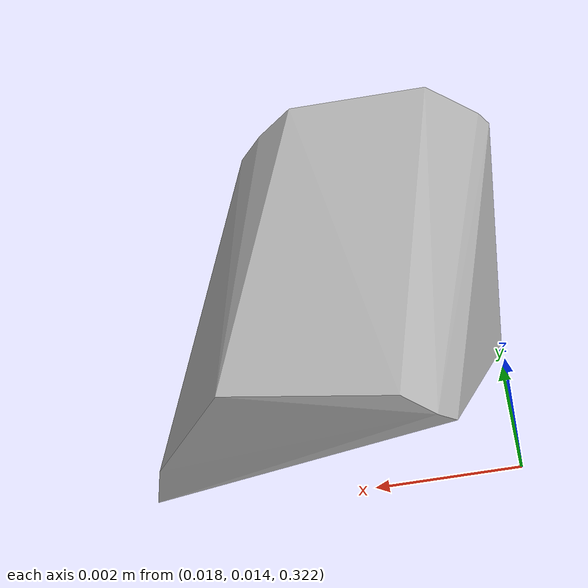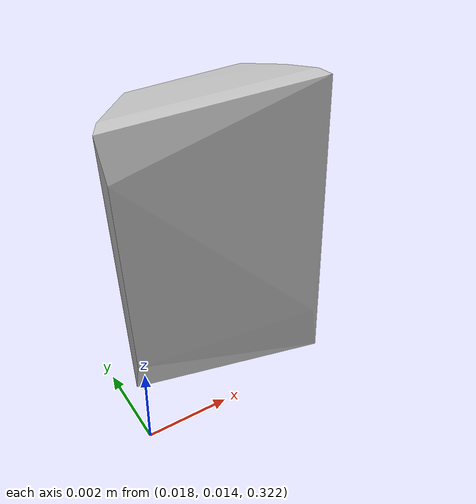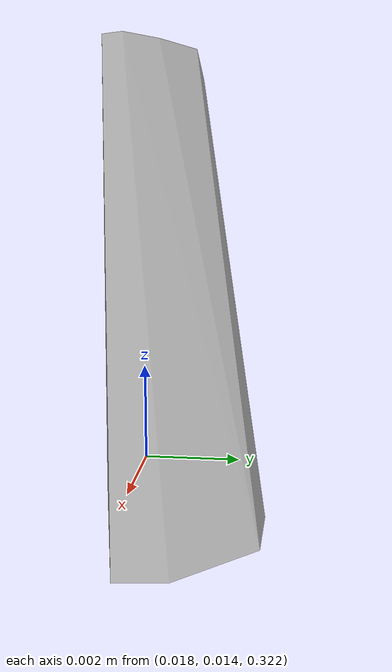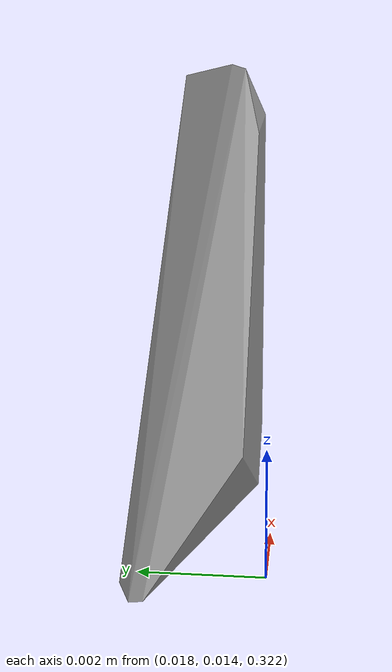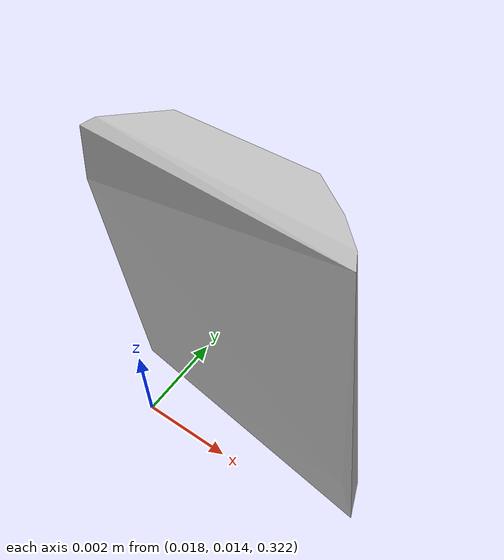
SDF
<?xml version="1.0"?>
<sdf version="1.7">
  <model name="vascular_partexport018">
    <link name="vascular_partexport018_body">
      <visual name="vascular_partexport018_visual">
        <geometry>
          <mesh>
            <uri>vascular_partexport018.obj</uri>
          </mesh>
        </geometry>
      </visual>
      <collision name="vascular_partexport018_collision">
        <geometry>
          <mesh>
            <uri>vascular_partexport018.obj</uri>
          </mesh>
        </geometry>
      </collision>
    </link>
    <frame name="vascular_partexport018_center">
      <pose relative_to="vascular_partexport018_body">0 0 0 0 0 0</pose>
    </frame>
  </model>
</sdf>
